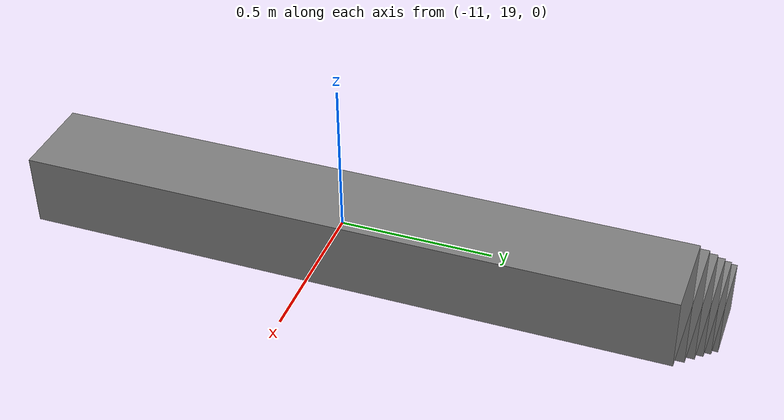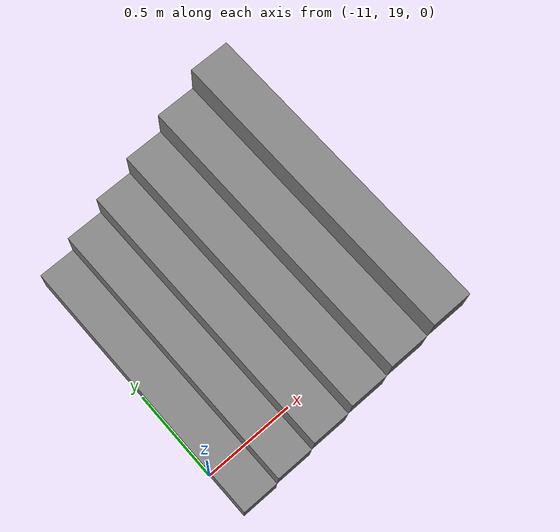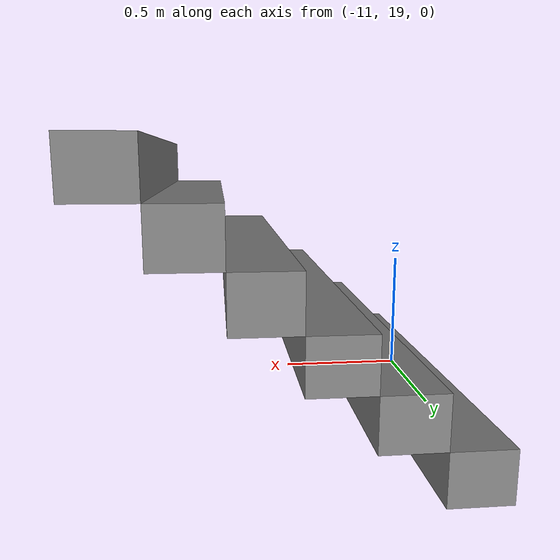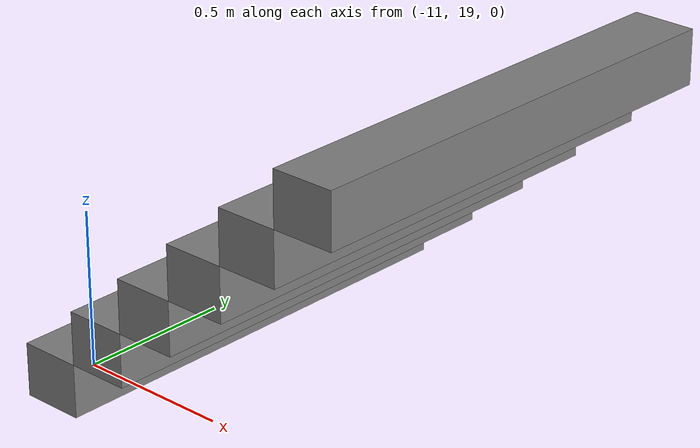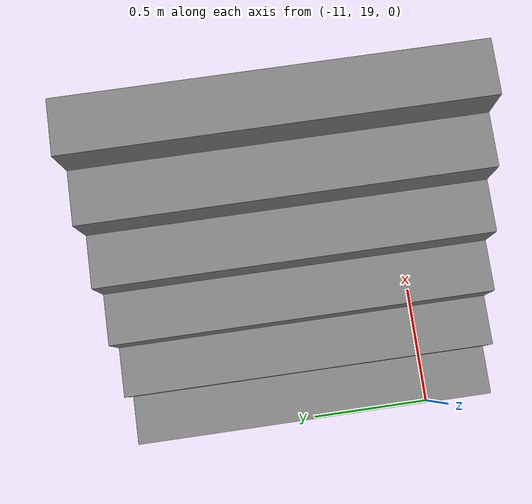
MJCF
<mujoco model="go2 scene">

  <statistic center="0 0 0.1" extent="0.8" />

  <visual>
    <headlight diffuse="0.6 0.6 0.6" ambient="0.3 0.3 0.3" specular="0 0 0" />
    <rgba haze="0.15 0.25 0.35 1" />
    <global azimuth="-130" elevation="-20" />
  </visual>

  <asset>
    <texture type="skybox" builtin="gradient" rgb1="0.3 0.5 0.7" rgb2="0 0 0" width="512" height="3072" />
  </asset>

  <worldbody>
  <geom pos="-10.9 19.5 0.085" type="box" size="0.1 0.75 0.085" quat="1.0 0.0 0.0 0.0" /><geom pos="-10.7 19.5 0.255" type="box" size="0.1 0.75 0.085" quat="1.0 0.0 0.0 0.0" /><geom pos="-10.5 19.5 0.42500000000000004" type="box" size="0.1 0.75 0.085" quat="1.0 0.0 0.0 0.0" /><geom pos="-10.3 19.5 0.595" type="box" size="0.1 0.75 0.085" quat="1.0 0.0 0.0 0.0" /><geom pos="-10.1 19.5 0.7649999999999999" type="box" size="0.1 0.75 0.085" quat="1.0 0.0 0.0 0.0" /><geom pos="-9.9 19.5 0.9349999999999998" type="box" size="0.1 0.75 0.085" quat="1.0 0.0 0.0 0.0" /></worldbody>
</mujoco>
